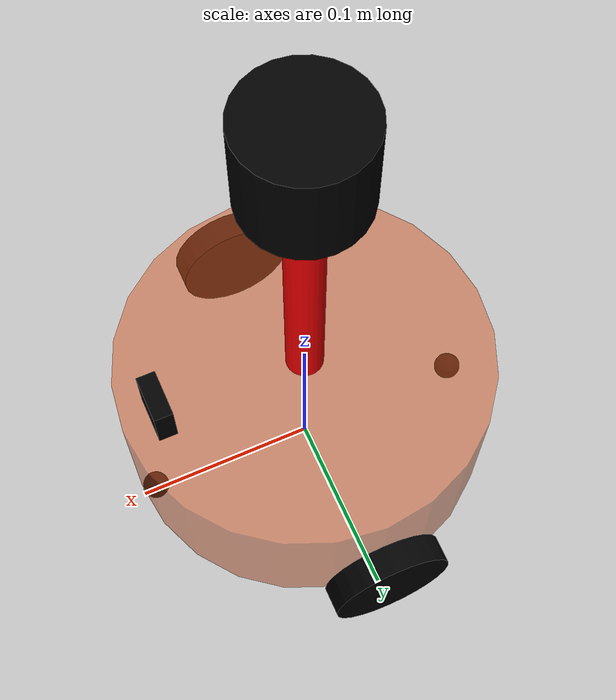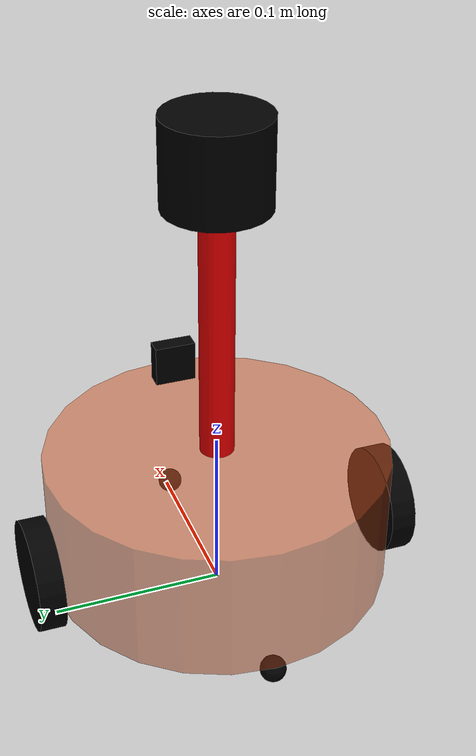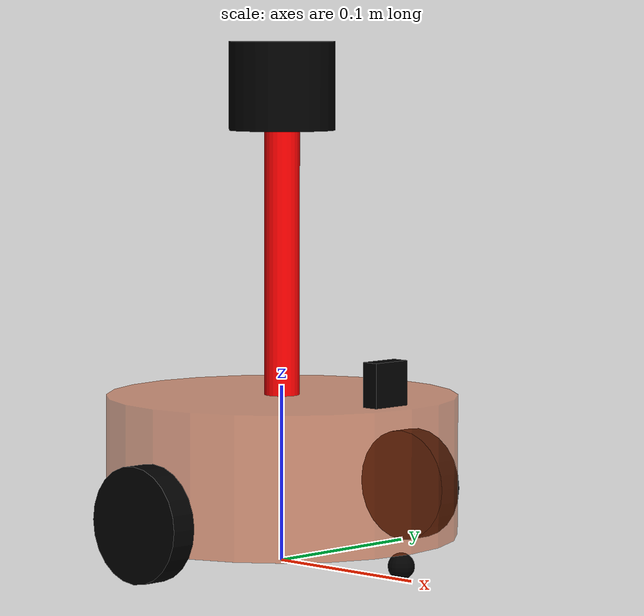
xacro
<robot name="mycar" xmlns:xacro="http://wiki.ros.org/xacro">
    <xacro:include filename="inertial.xacro" />
    <xacro:include filename="dipan.xacro" />
    <xacro:include filename="camera.xacro" />
    <xacro:include filename="laser.xacro" />
    <xacro:include filename="gazebo/move.xacro" />
    <xacro:include filename="gazebo/laser.xacro" />
    <xacro:include filename="gazebo/camera.xacro" />
    <xacro:include filename="gazebo/kinect.xacro" />
</robot>

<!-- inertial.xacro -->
<robot name="base" xmlns:xacro="http://wiki.ros.org/xacro">

    <xacro:macro name="sphere_inertial_matrix" params="m r">
        <inertial>
            <mass value="${m}" />
            <inertia ixx="${2*int(m)*int(r)*int(r)/5}" ixy="0" ixz="0"
                iyy="${2*int(m)*int(r)*int(r)/5}" iyz="0"
                izz="${2*int(m)*int(r)*int(r)/5}" />
        </inertial>
    </xacro:macro>

    <xacro:macro name="cylinder_inertial_matrix" params="m r h">
        <inertial>
            <mass value="${m}" />
            <inertia ixx="${m*(3*r*r+h*h)/12}" ixy = "0" ixz = "0"
                iyy="${m*(3*r*r+h*h)/12}" iyz = "0"
                izz="${m*r*r/2}" />
        </inertial>
    </xacro:macro>

    <xacro:macro name="Box_inertial_matrix" params="m l w h">
       <inertial>
               <mass value="${m}" />
               <inertia ixx="${m*(h*h + l*l)/12}" ixy = "0" ixz = "0"
                   iyy="${m*(w*w + l*l)/12}" iyz= "0"
                   izz="${m*(w*w + h*h)/12}" />
       </inertial>
   </xacro:macro>
</robot>

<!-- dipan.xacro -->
<robot name="my_car" xmlns:xacro="http://www.ros.org/wiki/xacro">

    <xacro:property name="base_footprint_size" value="0.001 0.001 0.001" />

    <link name="base_footprint">
        <visual>
            <geometry>
                <box size="${base_footprint_size}" />
            </geometry>
        </visual>
    </link>

    <xacro:property name="base_link_radius" value="0.1" />
    <xacro:property name="base_link_length" value="0.08" />
    <xacro:property name="lidi" value="0.015" />
    <xacro:property name="base_link_m" value="0.5" />

    <link name="base_link">
        <visual>
            <geometry>
                <cylinder radius="${base_link_radius}" length="${base_link_length}" />
            </geometry>
            <material name="yellow">
                <color rgba="0.8 0.3 0.1 0.5" />
            </material>
        </visual>
        <collision>
            <geometry>
                <cylinder radius="${base_link_radius}" length="${base_link_length}" />
            </geometry>
            <origin xyz="0 0 0" rpy="0 0 0" />
        </collision>
        <xacro:cylinder_inertial_matrix m="${base_link_m}" r="${base_link_radius}" h="${base_link_length}" />
    </link>

    <joint name="base_footprint2base_link" type="fixed">
        <parent link="base_footprint" />
        <child link ="base_link" />
        <origin xyz="0 0 ${lidi+base_link_length/2}" />
    </joint>
    <gazebo reference="base_link">
        <material>Gazebo/Yellow</material>
    </gazebo>

    <xacro:property name="qudong_wheel_radius" value="0.0325" />
    <xacro:property name="qudong_wheel_length" value="0.015" />
    <xacro:property name="PI" value="3.1415926" />
    <xacro:property name="wheel_mass" value="0.1" />

    <xacro:macro name="wheel_func" params="wheel_name flag">
        <link name="${wheel_name}_wheel">
            <visual>
                <geometry>
                    <cylinder radius="${qudong_wheel_radius}" length="${qudong_wheel_length}" />
                </geometry>
                <origin xyz="0 0 0" rpy="${PI/2} 0 0" />
                <material name="black">
                    <color rgba="0 0 0 1" />
                </material>
            </visual>
            <collision>
                <geometry>
                    <cylinder radius="${qudong_wheel_radius}" length="${qudong_wheel_length}" />
                </geometry>
                <origin xyz="0 0 0" rpy="${PI/2} 0 0" />
            </collision>
            <xacro:cylinder_inertial_matrix m="${wheel_mass}" r="${qudong_wheel_radius}" h="${qudong_wheel_length}" />
        </link>

        <joint name="${wheel_name}_wheel2base_link" type="continuous">
            <parent link="base_link" />
            <child link="${wheel_name}_wheel" />
            <origin xyz="0 ${flag*(base_link_radius+qudong_wheel_length/2)} ${-(lidi+base_link_length / 2-qudong_wheel_radius)}" />
            <axis xyz="0 1 0" />
        </joint>
        <gazebo reference="${wheel_name}_wheel">
            <material>Gazebo/Red</material>
        </gazebo>
    </xacro:macro>

    <xacro:wheel_func wheel_name="left" flag="1" />
    <xacro:wheel_func wheel_name="right" flag="-1" />

    <xacro:property name="wanxianglun_radius" value="0.0075" />
    <xacro:property name="wanxianglun_mass" value="0.03" />

    <xacro:macro name="wanxianglun_func" params="name flag">
        <link name="${name}_wheel">
            <visual>
                <geometry>
                    <sphere radius="${wanxianglun_radius}" />
                </geometry>
                <material name="black">
                    <color rgba="0 0 0 1" />
                </material>
            </visual>
            <collision>
                <geometry>
                    <sphere radius="${wanxianglun_radius}" />
                </geometry>
                <origin xyz="0 0 0" rpy="0 0 0" />
            </collision>
            <xacro:sphere_inertial_matrix m="${wanxianglun_mass}" r="${wanxianglun_radius}" />
        </link>

        <joint name="${name}_wheel2base_link" type="continuous">
            <parent link="base_link" />
            <child link="${name}_wheel" />
            <origin xyz="${flag*(base_link_radius-wanxianglun_radius)} 0 ${-(base_link_length/2+lidi/2)}" />
            <axis xyz="1 1 1" />
        </joint>
        <gazebo reference="${name}_wheel">
            <material>Gazebo/Red</material>
        </gazebo>
    </xacro:macro>
    <xacro:wanxianglun_func name="front" flag="-1" />
    <xacro:wanxianglun_func name="behind" flag="1" />
</robot>

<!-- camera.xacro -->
<robot name="my_camera" xmlns:xacro="http://wiki.ros.org/xacro">

    <xacro:property name="camera_length" value="0.01" />
    <xacro:property name="camera_width" value="0.025" />
    <xacro:property name="camera_height" value="0.025" />
    <xacro:property name="camera_mass" value="0.01" />
    <xacro:property name="camera_x" value="0.08" />
    <xacro:property name="camera_y" value="0" />
    <xacro:property name="camera_z" value="${base_link_length/2+camera_height/2}" />

    <link name="camera">
        <visual>
            <geometry>
                <box size="${camera_length} ${camera_width} ${camera_height}" />
            </geometry>
            <material name="black">
                <color rgba="0 0 0 1" />
            </material>
        </visual>
        <collision>
            <geometry>
                <box size="${camera_length} ${camera_width} ${camera_height}" />
            </geometry>
            <origin xyz="0 0 0" rpy="0 0 0" />
        </collision>
        <xacro:Box_inertial_matrix m="${camera_mass}" l="${camera_length}" w="${camera_width}" h="${camera_height}" />
    </link>

    <joint name="camera2base_link" type="fixed">
        <parent link="base_link" />
        <child link="camera" />
        <origin xyz="${camera_x} ${camera_y} ${camera_z}" />
    </joint>
    <gazebo reference="camera">
        <material>Gazebo/Blue</material>
    </gazebo>
</robot>

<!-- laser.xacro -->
<robot name="my_laser" xmlns:xacro="http://wiki.ros.org/xacro">

    <xacro:property name="support_radius" value="0.01" />
    <xacro:property name="support_length" value="0.15" />
    <xacro:property name="support_mass" value="0.02" />
    <xacro:property name="support_x" value="0" />
    <xacro:property name="support_y" value="0" />
    <xacro:property name="support_z" value="${base_link_length/2+support_length/2}" />

    <link name="support">
        <visual>
            <geometry>
                <cylinder radius="${support_radius}" length="${support_length}" />
            </geometry>
            <material name="red">
                <color rgba="1 0 0 1" />
            </material>
            <origin xyz="0 0 0" rpy="0 0 0" />
        </visual>
        <collision>
            <geometry>
                <cylinder radius="${support_radius}" length="${support_length}" />
                <origin xyz="0 0 0" rpy="0 0 0" />
            </geometry>
        </collision>
        <xacro:cylinder_inertial_matrix m="${support_mass}" r="${support_radius}" h="${support_length}" />
    </link>

    <joint name="support2base_link" type="fixed">
        <parent link="base_link" />
        <child link="support" />
        <origin xyz="${support_x} ${support_y} ${support_z}" />
    </joint>
    <gazebo reference="support">
        <material>Gazebo/White</material>
    </gazebo>

    <xacro:property name="laser_radius" value="0.03" />
    <xacro:property name="laser_length" value="0.05" />
    <xacro:property name="laser_mass" value="0.1" />
    <xacro:property name="laser_x" value="0" />
    <xacro:property name="laser_y" value="0" />
    <xacro:property name="laser_z" value="${support_length/2+laser_length/2}" />

    <link name="laser">
        <visual>
            <geometry>
                <cylinder radius="${laser_radius}" length="${laser_length}" />
            </geometry>
            <material name="black">
                <color rgba="0 0 0 1" />
            </material>
        </visual>
        <collision>
            <geometry>
                <cylinder radius="${laser_radius}" length="${laser_length}" />
            </geometry>
            <origin xyz="0 0 0" rpy="0 0 0" />
        </collision>
        <xacro:cylinder_inertial_matrix m="${laser_mass}" r="${laser_radius}" h="${laser_length}" />
    </link>

    <joint name="laser2support" type="fixed">
        <parent link="support" />
        <child link="laser" />
        <origin xyz="${laser_x} ${laser_y} ${laser_z}" />
    </joint>
    <gazebo reference="laser">
        <material>Gazebo/Black</material>
    </gazebo>
</robot>
